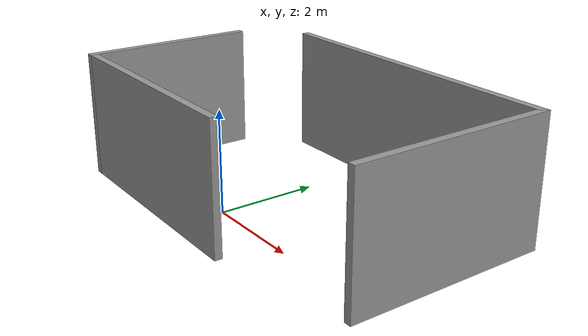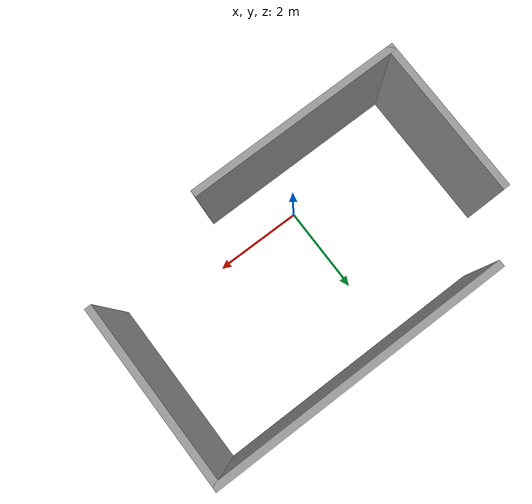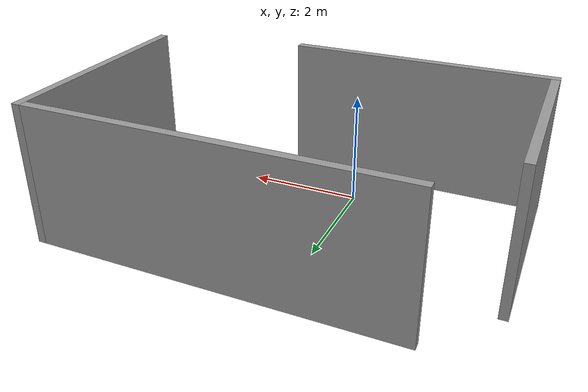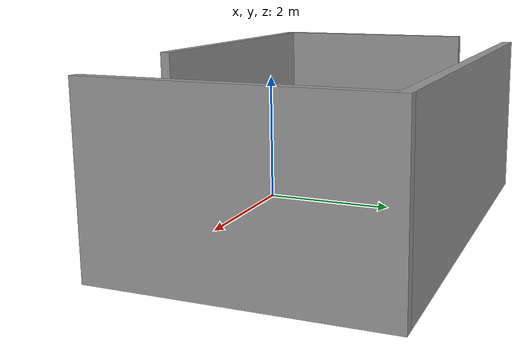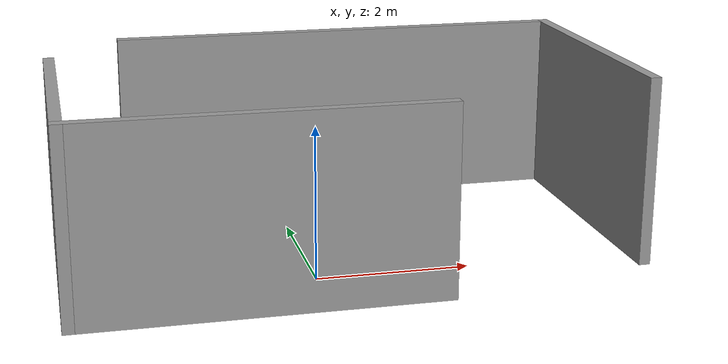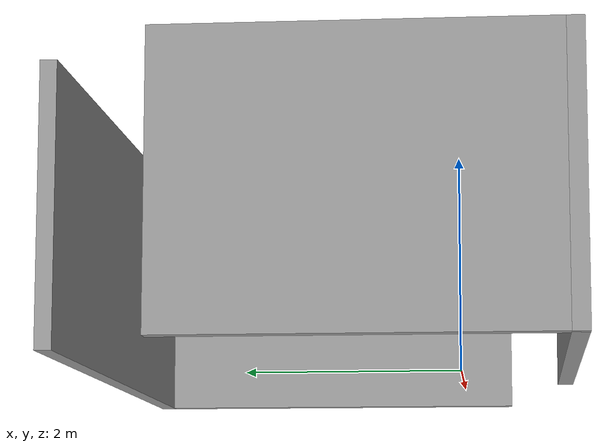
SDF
<?xml version='1.0'?>
<sdf version='1.7'>
  <model name='Model1'>
    <pose>0.572075 1.22592 0 0 -0 0</pose>
    <link name='Wall_0'>
      <collision name='Wall_0_Collision'>
        <geometry>
          <box>
            <size>4.75 0.15 2.5</size>
          </box>
        </geometry>
        <pose>0 0 1.25 0 -0 0</pose>
      </collision>
      <visual name='Wall_0_Visual'>
        <pose>0 0 1.25 0 -0 0</pose>
        <geometry>
          <box>
            <size>4.75 0.15 2.5</size>
          </box>
        </geometry>
        <material>
          <script>
            <uri>file://media/materials/scripts/gazebo.material</uri>
            <name>Gazebo/Grey</name>
          </script>
          <ambient>1 1 1 1</ambient>
        </material>
        <meta>
          <layer>0</layer>
        </meta>
      </visual>
      <pose>-1.40207 -2.22592 0 0 -0 3.14159</pose>
    </link>
    <link name='Wall_1'>
      <collision name='Wall_1_Collision'>
        <geometry>
          <box>
            <size>3.5 0.15 2.5</size>
          </box>
        </geometry>
        <pose>0 0 1.25 0 -0 0</pose>
      </collision>
      <visual name='Wall_1_Visual'>
        <pose>0 0 1.25 0 -0 0</pose>
        <geometry>
          <box>
            <size>3.5 0.15 2.5</size>
          </box>
        </geometry>
        <material>
          <script>
            <uri>file://media/materials/scripts/gazebo.material</uri>
            <name>Gazebo/Grey</name>
          </script>
          <ambient>1 1 1 1</ambient>
        </material>
        <meta>
          <layer>0</layer>
        </meta>
      </visual>
      <pose>-3.70207 -0.550924 0 0 -0 1.5708</pose>
    </link>
    <link name='Wall_3'>
      <collision name='Wall_3_Collision'>
        <geometry>
          <box>
            <size>6.5 0.15 2.5</size>
          </box>
        </geometry>
        <pose>0 0 1.25 0 -0 0</pose>
      </collision>
      <visual name='Wall_3_Visual'>
        <pose>0 0 1.25 0 -0 0</pose>
        <geometry>
          <box>
            <size>6.5 0.15 2.5</size>
          </box>
        </geometry>
        <material>
          <script>
            <uri>file://media/materials/scripts/gazebo.material</uri>
            <name>Gazebo/Grey</name>
          </script>
          <ambient>1 1 1 1</ambient>
        </material>
        <meta>
          <layer>0</layer>
        </meta>
      </visual>
      <pose>0.527075 2.22592 0 0 -0 0</pose>
    </link>
    <link name='Wall_4'>
      <collision name='Wall_4_Collision'>
        <geometry>
          <box>
            <size>4 0.15 2.5</size>
          </box>
        </geometry>
        <pose>0 0 1.25 0 -0 0</pose>
      </collision>
      <visual name='Wall_4_Visual'>
        <pose>0 0 1.25 0 -0 0</pose>
        <geometry>
          <box>
            <size>4 0.15 2.5</size>
          </box>
        </geometry>
        <material>
          <script>
            <uri>file://media/materials/scripts/gazebo.material</uri>
            <name>Gazebo/Grey</name>
          </script>
          <ambient>1 1 1 1</ambient>
        </material>
        <meta>
          <layer>0</layer>
        </meta>
      </visual>
      <pose>3.70207 0.300924 0 0 -0 -1.5708</pose>
    </link>
    <static>1</static>
  </model>
</sdf>
